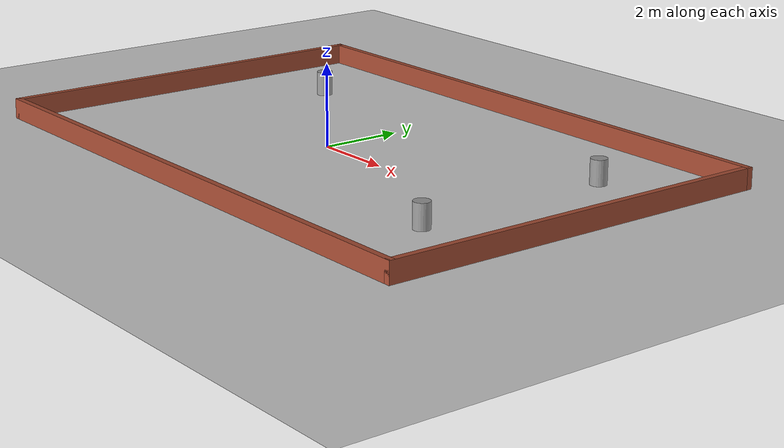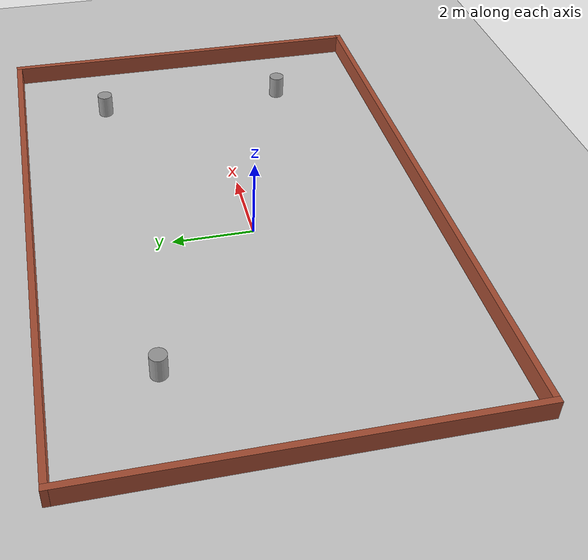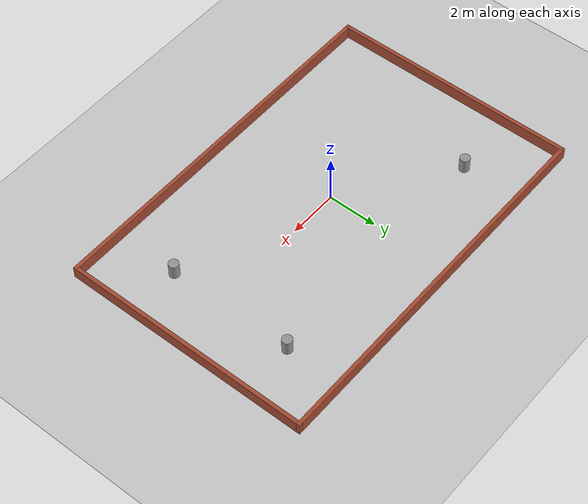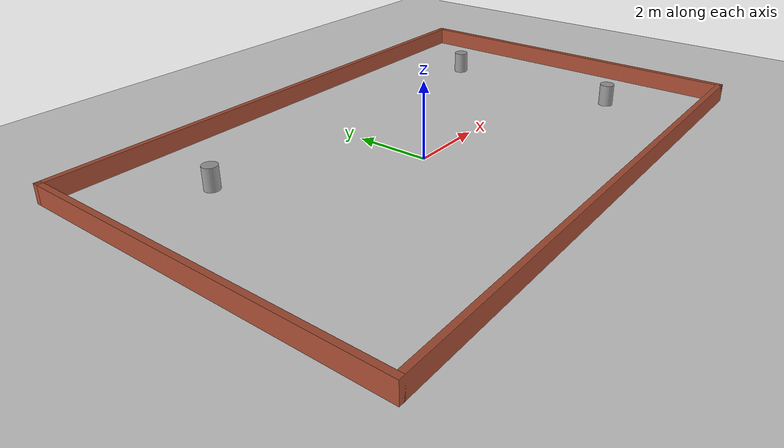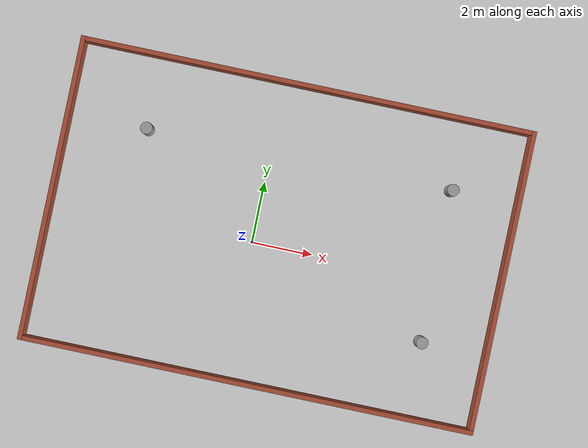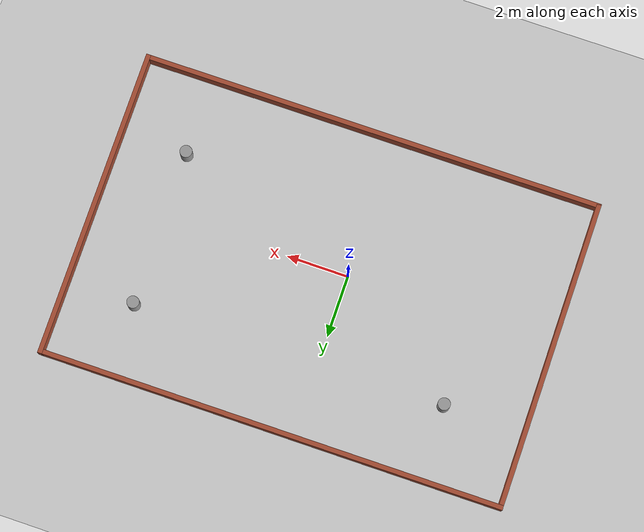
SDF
<sdf version="1.6">
 <world name="default">
  <light name="sun" type="directional">
   <pose>0 0 10 0 -0 0</pose>
   <diffuse>0.8 0.8 0.8 1</diffuse>
   <specular>0.2 0.2 0.2 1</specular>
   <attenuation>
    <range>1000</range>
    <constant>0.9</constant>
    <linear>0.01</linear>
    <quadratic>0.001</quadratic>
   </attenuation>
   <direction>-0.5 0.1 -0.9</direction>
  </light>
  <model name="ground_plane">
   <static>1</static>
   <link name="link">
    <collision name="collision">
     <geometry><plane><normal>0 0 1</normal><size>100 100</size></plane></geometry>
     <surface>
      <contact><collide_bitmask>65535</collide_bitmask></contact>
      <friction><ode><mu>100</mu><mu2>50</mu2></ode></friction>
     </surface>
    </collision>
    <visual name="visual">
     <cast_shadows>0</cast_shadows>
     <geometry><plane><normal>0 0 1</normal><size>100 100</size></plane></geometry>
     <material>
      <script><uri>file://media/materials/scripts/gazebo.material</uri><name>Gazebo/Grey</name></script>
     </material>
    </visual>
   </link>
  </model>
  <gravity>0 0 -9.8</gravity>
  <magnetic_field>6e-06 2.3e-05 -4.2e-05</magnetic_field>
  <atmosphere type="adiabatic"/>
  <physics name="default_physics" default="0" type="ode">
   <max_step_size>0.001</max_step_size>
   <real_time_factor>1</real_time_factor>
   <real_time_update_rate>1000</real_time_update_rate>
  </physics>
  <scene><ambient>0.4 0.4 0.4 1</ambient><background>0.7 0.7 0.7 1</background><shadows>1</shadows></scene>
  <audio><device>default</device></audio>
  <spherical_coordinates>
   <surface_model>EARTH_WGS84</surface_model>
   <latitude_deg>0</latitude_deg>
   <longitude_deg>0</longitude_deg>
   <elevation>0</elevation>
   <heading_deg>0</heading_deg>
  </spherical_coordinates>
  <model name="room">
   <pose>0.748 0.389 0 0 -0 0</pose>
   <link name="Wall_0">
    <collision name="Wall_0_Collision">
     <geometry><box><size>10 0.15 0.5</size></box></geometry>
     <pose>0 0 0.25 0 -0 0</pose>
    </collision>
    <visual name="Wall_0_Visual">
     <pose>0 0 0.25 0 -0 0</pose>
     <geometry><box><size>10 0.15 0.5</size></box></geometry>
     <material>
      <script><uri>file://media/materials/scripts/gazebo.material</uri><name>Gazebo/Bricks</name></script>
      <ambient>1 1 1 1</ambient>
     </material>
     <meta><layer>0</layer></meta>
    </visual>
    <pose>-7.425 0 0 0 -0 -1.5708</pose>
   </link>
   <link name="Wall_2">
    <collision name="Wall_2_Collision">
     <geometry><box><size>15 0.15 0.5</size></box></geometry>
     <pose>0 0 0.25 0 -0 0</pose>
    </collision>
    <visual name="Wall_2_Visual">
     <pose>0 0 0.25 0 -0 0</pose>
     <geometry><box><size>15 0.15 0.5</size></box></geometry>
     <material>
      <script><uri>file://media/materials/scripts/gazebo.material</uri><name>Gazebo/Bricks</name></script>
      <ambient>1 1 1 1</ambient>
     </material>
     <meta><layer>0</layer></meta>
    </visual>
    <pose>-0 -4.925 0 0 -0 0</pose>
   </link>
   <link name="Wall_3">
    <collision name="Wall_3_Collision">
     <geometry><box><size>10 0.15 0.5</size></box></geometry>
     <pose>0 0 0.25 0 -0 0</pose>
    </collision>
    <visual name="Wall_3_Visual">
     <pose>0 0 0.25 0 -0 0</pose>
     <geometry><box><size>10 0.15 0.5</size></box></geometry>
     <material>
      <script><uri>file://media/materials/scripts/gazebo.material</uri><name>Gazebo/Bricks</name></script>
      <ambient>1 1 1 1</ambient>
     </material>
     <meta><layer>0</layer></meta>
    </visual>
    <pose>7.425 0 0 0 -0 1.5708</pose>
   </link>
   <link name="Wall_4">
    <collision name="Wall_4_Collision">
     <geometry><box><size>15 0.15 0.5</size></box></geometry>
     <pose>0 0 0.25 0 -0 0</pose>
    </collision>
    <visual name="Wall_4_Visual">
     <pose>0 0 0.25 0 -0 0</pose>
     <geometry><box><size>15 0.15 0.5</size></box></geometry>
     <material>
      <script><uri>file://media/materials/scripts/gazebo.material</uri><name>Gazebo/Bricks</name></script>
      <ambient>1 1 1 1</ambient>
     </material>
     <meta><layer>0</layer></meta>
    </visual>
    <pose>-0 4.925 0 0 -0 3.14159</pose>
   </link>
   <static>1</static>
  </model>
  <model name="unit_cylinder">
   <pose>-4.06668 2.89293 0.302351 0 -0 0</pose>
   <link name="link">
    <inertial>
     <mass>1</mass>
     <inertia><ixx>0.145833</ixx><ixy>0</ixy><ixz>0</ixz><iyy>0.145833</iyy><iyz>0</iyz><izz>0.125</izz></inertia>
    </inertial>
    <collision name="collision">
     <geometry><cylinder><radius>0.196929</radius><length>0.60472</length></cylinder></geometry>
    </collision>
    <visual name="visual">
     <geometry><cylinder><radius>0.196929</radius><length>0.60472</length></cylinder></geometry>
     <material>
      <script><name>Gazebo/Grey</name><uri>file://media/materials/scripts/gazebo.material</uri></script>
     </material>
    </visual>
   </link>
  </model>
  <model name="unit_cylinder_clone_0">
   <pose>6.01726 -2.02279 0.302358 1e-06 1e-06 0</pose>
   <link name="link">
    <inertial>
     <mass>1</mass>
     <inertia><ixx>0.145833</ixx><ixy>0</ixy><ixz>0</ixz><iyy>0.145833</iyy><iyz>0</iyz><izz>0.125</izz></inertia>
    </inertial>
    <collision name="collision">
     <geometry><cylinder><radius>0.196929</radius><length>0.60472</length></cylinder></geometry>
    </collision>
    <visual name="visual">
     <geometry><cylinder><radius>0.196929</radius><length>0.60472</length></cylinder></geometry>
     <material>
      <script><name>Gazebo/Grey</name><uri>file://media/materials/scripts/gazebo.material</uri></script>
     </material>
    </visual>
   </link>
  </model>
  <model name="unit_cylinder_clone_1">
   <pose>5.98041 2.98452 0.302358 1e-06 1e-06 0</pose>
   <link name="link">
    <inertial>
     <mass>1</mass>
     <inertia><ixx>0.145833</ixx><ixy>0</ixy><ixz>0</ixz><iyy>0.145833</iyy><iyz>0</iyz><izz>0.125</izz></inertia>
    </inertial>
    <collision name="collision">
     <geometry><cylinder><radius>0.196929</radius><length>0.60472</length></cylinder></geometry>
    </collision>
    <visual name="visual">
     <geometry><cylinder><radius>0.196929</radius><length>0.60472</length></cylinder></geometry>
     <material>
      <script><name>Gazebo/Grey</name><uri>file://media/materials/scripts/gazebo.material</uri></script>
     </material>
    </visual>
   </link>
  </model>
 </world>
</sdf>
